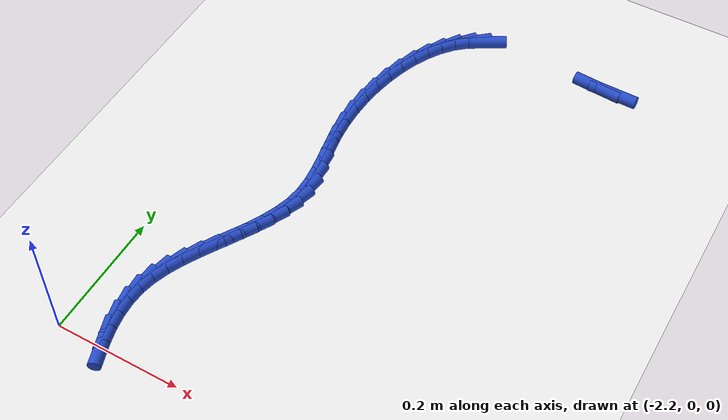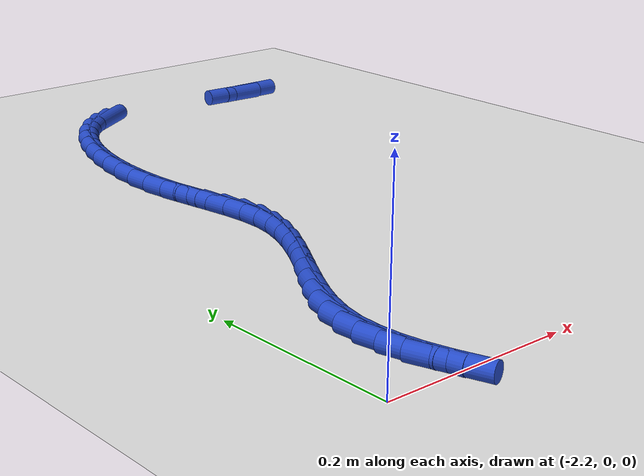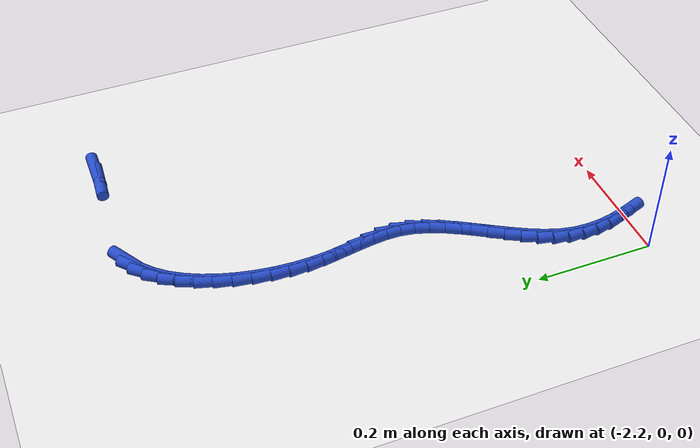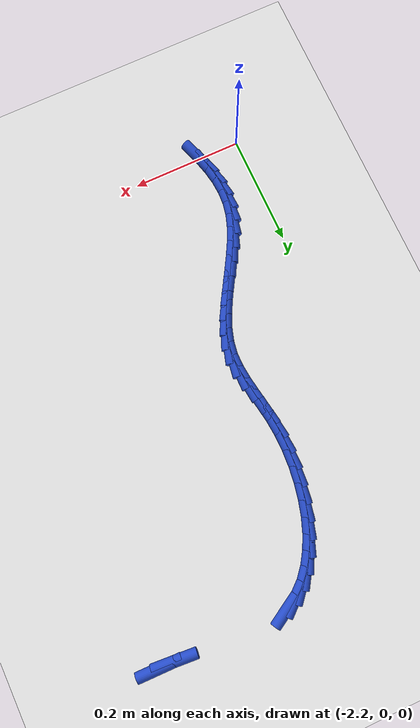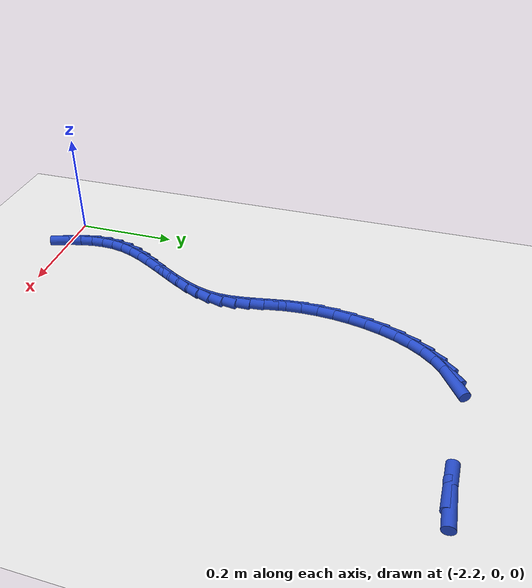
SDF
<sdf version="1.6">
 <world name="default">
  <model name="ground_plane">
   <static>1</static>
   <link name="link">
    <collision name="collision">
     <geometry><plane><normal>0 0 1</normal><size>100 100</size></plane></geometry>
     <surface><friction><ode><mu>100</mu><mu2>50</mu2></ode></friction></surface>
    </collision>
    <visual name="visual">
     <cast_shadows>0</cast_shadows>
     <geometry><plane><normal>0 0 1</normal><size>100 100</size></plane></geometry>
     <material>
      <script><uri>file://media/materials/scripts/gazebo.material</uri><name>Gazebo/WhiteGlow</name></script>
     </material>
    </visual>
   </link>
  </model>
  <model name="line">
   <link name="link_98">
    <pose>-1.6982301390189989 0.7830233124984088 0.01 0 1.57 -0.019217787172694612</pose>
    <collision name="collision">
     <geometry><cylinder><radius>0.01</radius><length>0.08</length></cylinder></geometry>
    </collision>
    <visual name="visual">
     <material>
      <script><name>Gazebo/Blue</name><uri>file://media/materials/scripts/gazebo.material</uri></script>
     </material>
     <geometry><cylinder><radius>0.01</radius><length>0.08</length></cylinder></geometry>
    </visual>
   </link>
   <link name="link_99">
    <pose>-1.725118082502355 0.7835401028962692 0.01 0 1.57 -0.07915744096107986</pose>
    <collision name="collision">
     <geometry><cylinder><radius>0.01</radius><length>0.08</length></cylinder></geometry>
    </collision>
    <visual name="visual">
     <material>
      <script><name>Gazebo/Blue</name><uri>file://media/materials/scripts/gazebo.material</uri></script>
     </material>
     <geometry><cylinder><radius>0.01</radius><length>0.08</length></cylinder></geometry>
    </visual>
   </link>
   <link name="link_107">
    <pose>-1.9322411490218507 0.7833969094656144 0.01 0 1.57 0.5272576794946608</pose>
    <collision name="collision">
     <geometry><cylinder><radius>0.01</radius><length>0.08</length></cylinder></geometry>
    </collision>
    <visual name="visual">
     <material>
      <script><name>Gazebo/Blue</name><uri>file://media/materials/scripts/gazebo.material</uri></script>
     </material>
     <geometry><cylinder><radius>0.01</radius><length>0.08</length></cylinder></geometry>
    </visual>
   </link>
   <link name="link_108">
    <pose>-1.9523897778019141 0.7716655888267819 0.01 0 1.57 0.7113757356095853</pose>
    <collision name="collision">
     <geometry><cylinder><radius>0.01</radius><length>0.08</length></cylinder></geometry>
    </collision>
    <visual name="visual">
     <material>
      <script><name>Gazebo/Blue</name><uri>file://media/materials/scripts/gazebo.material</uri></script>
     </material>
     <geometry><cylinder><radius>0.01</radius><length>0.08</length></cylinder></geometry>
    </visual>
   </link>
   <link name="link_109">
    <pose>-1.970513964577197 0.7560439242717625 0.01 0 1.57 0.8689577022621335</pose>
    <collision name="collision">
     <geometry><cylinder><radius>0.01</radius><length>0.08</length></cylinder></geometry>
    </collision>
    <visual name="visual">
     <material>
      <script><name>Gazebo/Blue</name><uri>file://media/materials/scripts/gazebo.material</uri></script>
     </material>
     <geometry><cylinder><radius>0.01</radius><length>0.08</length></cylinder></geometry>
    </visual>
   </link>
   <link name="link_110">
    <pose>-1.986609039085955 0.7370063284176988 0.01 0 1.57 1.001655556883775</pose>
    <collision name="collision">
     <geometry><cylinder><radius>0.01</radius><length>0.08</length></cylinder></geometry>
    </collision>
    <visual name="visual">
     <material>
      <script><name>Gazebo/Blue</name><uri>file://media/materials/scripts/gazebo.material</uri></script>
     </material>
     <geometry><cylinder><radius>0.01</radius><length>0.08</length></cylinder></geometry>
    </visual>
   </link>
   <link name="link_111">
    <pose>-2.0006703310664453 0.7150272138817331 0.01 0 1.57 1.1137240211456216</pose>
    <collision name="collision">
     <geometry><cylinder><radius>0.01</radius><length>0.08</length></cylinder></geometry>
    </collision>
    <visual name="visual">
     <material>
      <script><name>Gazebo/Blue</name><uri>file://media/materials/scripts/gazebo.material</uri></script>
     </material>
     <geometry><cylinder><radius>0.01</radius><length>0.08</length></cylinder></geometry>
    </visual>
   </link>
   <link name="link_112">
    <pose>-2.0126931702569246 0.6905809932810079 0.01 0 1.57 1.2098679213330088</pose>
    <collision name="collision">
     <geometry><cylinder><radius>0.01</radius><length>0.08</length></cylinder></geometry>
    </collision>
    <visual name="visual">
     <material>
      <script><name>Gazebo/Blue</name><uri>file://media/materials/scripts/gazebo.material</uri></script>
     </material>
     <geometry><cylinder><radius>0.01</radius><length>0.08</length></cylinder></geometry>
    </visual>
   </link>
   <link name="link_113">
    <pose>-2.02267288639565 0.6641420792326657 0.01 0 1.57 1.2943444734109244</pose>
    <collision name="collision">
     <geometry><cylinder><radius>0.01</radius><length>0.08</length></cylinder></geometry>
    </collision>
    <visual name="visual">
     <material>
      <script><name>Gazebo/Blue</name><uri>file://media/materials/scripts/gazebo.material</uri></script>
     </material>
     <geometry><cylinder><radius>0.01</radius><length>0.08</length></cylinder></geometry>
    </visual>
   </link>
   <link name="link_114">
    <pose>-2.030604809220878 0.6361848843538499 0.01 0 1.57 1.3707747084330164</pose>
    <collision name="collision">
     <geometry><cylinder><radius>0.01</radius><length>0.08</length></cylinder></geometry>
    </collision>
    <visual name="visual">
     <material>
      <script><name>Gazebo/Blue</name><uri>file://media/materials/scripts/gazebo.material</uri></script>
     </material>
     <geometry><cylinder><radius>0.01</radius><length>0.08</length></cylinder></geometry>
    </visual>
   </link>
   <link name="link_115">
    <pose>-2.036484268470866 0.6071838212617027 0.01 0 1.57 1.4422477572701</pose>
    <collision name="collision">
     <geometry><cylinder><radius>0.01</radius><length>0.08</length></cylinder></geometry>
    </collision>
    <visual name="visual">
     <material>
      <script><name>Gazebo/Blue</name><uri>file://media/materials/scripts/gazebo.material</uri></script>
     </material>
     <geometry><cylinder><radius>0.01</radius><length>0.08</length></cylinder></geometry>
    </visual>
   </link>
   <link name="link_116">
    <pose>-2.040306593883871 0.577613302573367 0.01 0 1.57 1.5115202242484327</pose>
    <collision name="collision">
     <geometry><cylinder><radius>0.01</radius><length>0.08</length></cylinder></geometry>
    </collision>
    <visual name="visual">
     <material>
      <script><name>Gazebo/Blue</name><uri>file://media/materials/scripts/gazebo.material</uri></script>
     </material>
     <geometry><cylinder><radius>0.01</radius><length>0.08</length></cylinder></geometry>
    </visual>
   </link>
   <link name="link_117">
    <pose>-2.042067115198149 0.5479477409059844 0.01 0 1.57 -1.560349700068938</pose>
    <collision name="collision">
     <geometry><cylinder><radius>0.01</radius><length>0.08</length></cylinder></geometry>
    </collision>
    <visual name="visual">
     <material>
      <script><name>Gazebo/Blue</name><uri>file://media/materials/scripts/gazebo.material</uri></script>
     </material>
     <geometry><cylinder><radius>0.01</radius><length>0.08</length></cylinder></geometry>
    </visual>
   </link>
   <link name="link_118">
    <pose>-2.0417611621519565 0.5186615488766988 0.01 0 1.57 -1.4877483164062903</pose>
    <collision name="collision">
     <geometry><cylinder><radius>0.01</radius><length>0.08</length></cylinder></geometry>
    </collision>
    <visual name="visual">
     <material>
      <script><name>Gazebo/Blue</name><uri>file://media/materials/scripts/gazebo.material</uri></script>
     </material>
     <geometry><cylinder><radius>0.01</radius><length>0.08</length></cylinder></geometry>
    </visual>
   </link>
   <link name="link_119">
    <pose>-2.039393987447351 0.4902234192085622 0.01 0 1.57 -1.4261480941135458</pose>
    <collision name="collision">
     <geometry><cylinder><radius>0.01</radius><length>0.08</length></cylinder></geometry>
    </collision>
    <visual name="visual">
     <material>
      <script><name>Gazebo/Blue</name><uri>file://media/materials/scripts/gazebo.material</uri></script>
     </material>
     <geometry><cylinder><radius>0.01</radius><length>0.08</length></cylinder></geometry>
    </visual>
   </link>
   <link name="link_120">
    <pose>-2.0354067365574506 0.4628507829516636 0.01 0 1.57 -1.399637534083401</pose>
    <collision name="collision">
     <geometry><cylinder><radius>0.01</radius><length>0.08</length></cylinder></geometry>
    </collision>
    <visual name="visual">
     <material>
      <script><name>Gazebo/Blue</name><uri>file://media/materials/scripts/gazebo.material</uri></script>
     </material>
     <geometry><cylinder><radius>0.01</radius><length>0.08</length></cylinder></geometry>
    </visual>
   </link>
   <link name="link_121">
    <pose>-2.03083763891744 0.4364168940438082 0.01 0 1.57 -1.413431405700546</pose>
    <collision name="collision">
     <geometry><cylinder><radius>0.01</radius><length>0.08</length></cylinder></geometry>
    </collision>
    <visual name="visual">
     <material>
      <script><name>Gazebo/Blue</name><uri>file://media/materials/scripts/gazebo.material</uri></script>
     </material>
     <geometry><cylinder><radius>0.01</radius><length>0.08</length></cylinder></geometry>
    </visual>
   </link>
   <link name="link_122">
    <pose>-2.0267680891050537 0.41077012473939195 0.01 0 1.57 -1.4716233302067325</pose>
    <collision name="collision">
     <geometry><cylinder><radius>0.01</radius><length>0.08</length></cylinder></geometry>
    </collision>
    <visual name="visual">
     <material>
      <script><name>Gazebo/Blue</name><uri>file://media/materials/scripts/gazebo.material</uri></script>
     </material>
     <geometry><cylinder><radius>0.01</radius><length>0.08</length></cylinder></geometry>
    </visual>
   </link>
   <link name="link_123">
    <pose>-2.024279481698024 0.38575884729281207 0.01 0 1.57 1.5637133674774548</pose>
    <collision name="collision">
     <geometry><cylinder><radius>0.01</radius><length>0.08</length></cylinder></geometry>
    </collision>
    <visual name="visual">
     <material>
      <script><name>Gazebo/Blue</name><uri>file://media/materials/scripts/gazebo.material</uri></script>
     </material>
     <geometry><cylinder><radius>0.01</radius><length>0.08</length></cylinder></geometry>
    </visual>
   </link>
   <link name="link_124">
    <pose>-2.024453211274083 0.3612314339584642 0.01 0 1.57 1.41355628103634</pose>
    <collision name="collision">
     <geometry><cylinder><radius>0.01</radius><length>0.08</length></cylinder></geometry>
    </collision>
    <visual name="visual">
     <material>
      <script><name>Gazebo/Blue</name><uri>file://media/materials/scripts/gazebo.material</uri></script>
     </material>
     <geometry><cylinder><radius>0.01</radius><length>0.08</length></cylinder></geometry>
    </visual>
   </link>
   <link name="link_125">
    <pose>-2.0282885931449783 0.337040901479954 0.01 0 1.57 1.2691617978922045</pose>
    <collision name="collision">
     <geometry><cylinder><radius>0.01</radius><length>0.08</length></cylinder></geometry>
    </collision>
    <visual name="visual">
     <material>
      <script><name>Gazebo/Blue</name><uri>file://media/materials/scripts/gazebo.material</uri></script>
     </material>
     <geometry><cylinder><radius>0.01</radius><length>0.08</length></cylinder></geometry>
    </visual>
   </link>
   <link name="link_126">
    <pose>-2.0357374229813154 0.3130995409329784 0.01 0 1.57 1.161738862449888</pose>
    <collision name="collision">
     <geometry><cylinder><radius>0.01</radius><length>0.08</length></cylinder></geometry>
    </collision>
    <visual name="visual">
     <material>
      <script><name>Gazebo/Blue</name><uri>file://media/materials/scripts/gazebo.material</uri></script>
     </material>
     <geometry><cylinder><radius>0.01</radius><length>0.08</length></cylinder></geometry>
    </visual>
   </link>
   <link name="link_127">
    <pose>-2.0460285375352467 0.2893605523226127 0.01 0 1.57 1.088446509883672</pose>
    <collision name="collision">
     <geometry><cylinder><radius>0.01</radius><length>0.08</length></cylinder></geometry>
    </collision>
    <visual name="visual">
     <material>
      <script><name>Gazebo/Blue</name><uri>file://media/materials/scripts/gazebo.material</uri></script>
     </material>
     <geometry><cylinder><radius>0.01</radius><length>0.08</length></cylinder></geometry>
    </visual>
   </link>
   <link name="link_128">
    <pose>-2.058376417676402 0.2657779479874806 0.01 0 1.57 1.0450453065288272</pose>
    <collision name="collision">
     <geometry><cylinder><radius>0.01</radius><length>0.08</length></cylinder></geometry>
    </collision>
    <visual name="visual">
     <material>
      <script><name>Gazebo/Blue</name><uri>file://media/materials/scripts/gazebo.material</uri></script>
     </material>
     <geometry><cylinder><radius>0.01</radius><length>0.08</length></cylinder></geometry>
    </visual>
   </link>
   <link name="link_129">
    <pose>-2.0719955442744094 0.24230574026620605 0.01 0 1.57 1.02848874214878</pose>
    <collision name="collision">
     <geometry><cylinder><radius>0.01</radius><length>0.08</length></cylinder></geometry>
    </collision>
    <visual name="visual">
     <material>
      <script><name>Gazebo/Blue</name><uri>file://media/materials/scripts/gazebo.material</uri></script>
     </material>
     <geometry><cylinder><radius>0.01</radius><length>0.08</length></cylinder></geometry>
    </visual>
   </link>
   <link name="link_130">
    <pose>-2.0861003981988993 0.21889794149741318 0.01 0 1.57 1.0375932134089685</pose>
    <collision name="collision">
     <geometry><cylinder><radius>0.01</radius><length>0.08</length></cylinder></geometry>
    </collision>
    <visual name="visual">
     <material>
      <script><name>Gazebo/Blue</name><uri>file://media/materials/scripts/gazebo.material</uri></script>
     </material>
     <geometry><cylinder><radius>0.01</radius><length>0.08</length></cylinder></geometry>
    </visual>
   </link>
   <link name="link_131">
    <pose>-2.0999054603194995 0.19550856401972552 0.01 0 1.57 1.0731998024307337</pose>
    <collision name="collision">
     <geometry><cylinder><radius>0.01</radius><length>0.08</length></cylinder></geometry>
    </collision>
    <visual name="visual">
     <material>
      <script><name>Gazebo/Blue</name><uri>file://media/materials/scripts/gazebo.material</uri></script>
     </material>
     <geometry><cylinder><radius>0.01</radius><length>0.08</length></cylinder></geometry>
    </visual>
   </link>
   <link name="link_132">
    <pose>-2.1126252115058395 0.17209162017176802 0.01 0 1.57 1.1381375530251645</pose>
    <collision name="collision">
     <geometry><cylinder><radius>0.01</radius><length>0.08</length></cylinder></geometry>
    </collision>
    <visual name="visual">
     <material>
      <script><name>Gazebo/Blue</name><uri>file://media/materials/scripts/gazebo.material</uri></script>
     </material>
     <geometry><cylinder><radius>0.01</radius><length>0.08</length></cylinder></geometry>
    </visual>
   </link>
   <link name="link_133">
    <pose>-2.123474132627549 0.14860112229216427 0.01 0 1.57 1.2368008357205547</pose>
    <collision name="collision">
     <geometry><cylinder><radius>0.01</radius><length>0.08</length></cylinder></geometry>
    </collision>
    <visual name="visual">
     <material>
      <script><name>Gazebo/Blue</name><uri>file://media/materials/scripts/gazebo.material</uri></script>
     </material>
     <geometry><cylinder><radius>0.01</radius><length>0.08</length></cylinder></geometry>
    </visual>
   </link>
   <link name="link_134">
    <pose>-2.131666704554255 0.12499108271953824 0.01 0 1.57 1.3707420568813549</pose>
    <collision name="collision">
     <geometry><cylinder><radius>0.01</radius><length>0.08</length></cylinder></geometry>
    </collision>
    <visual name="visual">
     <material>
      <script><name>Gazebo/Blue</name><uri>file://media/materials/scripts/gazebo.material</uri></script>
     </material>
     <geometry><cylinder><radius>0.01</radius><length>0.08</length></cylinder></geometry>
    </visual>
   </link>
   <link name="link_135">
    <pose>-2.1364869611180617 0.10121863654931401 0.01 0 1.57 1.5115673575690478</pose>
    <collision name="collision">
     <geometry><cylinder><radius>0.01</radius><length>0.08</length></cylinder></geometry>
    </collision>
    <visual name="visual">
     <material>
      <script><name>Gazebo/Blue</name><uri>file://media/materials/scripts/gazebo.material</uri></script>
     </material>
     <geometry><cylinder><radius>0.01</radius><length>0.08</length></cylinder></geometry>
    </visual>
   </link>
   <link name="link_136">
    <pose>-2.1379069678654323 0.07727180980720125 0.01 0 1.57 -1.5039050376995466</pose>
    <collision name="collision">
     <geometry><cylinder><radius>0.01</radius><length>0.08</length></cylinder></geometry>
    </collision>
    <visual name="visual">
     <material>
      <script><name>Gazebo/Blue</name><uri>file://media/materials/scripts/gazebo.material</uri></script>
     </material>
     <geometry><cylinder><radius>0.01</radius><length>0.08</length></cylinder></geometry>
    </visual>
   </link>
   <link name="link_137">
    <pose>-2.1362914372243336 0.053156257397330466 0.01 0 1.57 -1.3962301924368954</pose>
    <collision name="collision">
     <geometry><cylinder><radius>0.01</radius><length>0.08</length></cylinder></geometry>
    </collision>
    <visual name="visual">
     <material>
      <script><name>Gazebo/Blue</name><uri>file://media/materials/scripts/gazebo.material</uri></script>
     </material>
     <geometry><cylinder><radius>0.01</radius><length>0.08</length></cylinder></geometry>
    </visual>
   </link>
   <link name="link_138">
    <pose>-2.132009665857709 0.028877840044698358 0.01 0 1.57 -1.3078035761660747</pose>
    <collision name="collision">
     <geometry><cylinder><radius>0.01</radius><length>0.08</length></cylinder></geometry>
    </collision>
    <visual name="visual">
     <material>
      <script><name>Gazebo/Blue</name><uri>file://media/materials/scripts/gazebo.material</uri></script>
     </material>
     <geometry><cylinder><radius>0.01</radius><length>0.08</length></cylinder></geometry>
    </visual>
   </link>
   <link name="link_139">
    <pose>-2.125430950428501 0.0044424184743015105 0.01 0 1.57 -1.237710800137122</pose>
    <collision name="collision">
     <geometry><cylinder><radius>0.01</radius><length>0.08</length></cylinder></geometry>
    </collision>
    <visual name="visual">
     <material>
      <script><name>Gazebo/Blue</name><uri>file://media/materials/scripts/gazebo.material</uri></script>
     </material>
     <geometry><cylinder><radius>0.01</radius><length>0.08</length></cylinder></geometry>
    </visual>
   </link>
  </model>
 </world>
</sdf>
